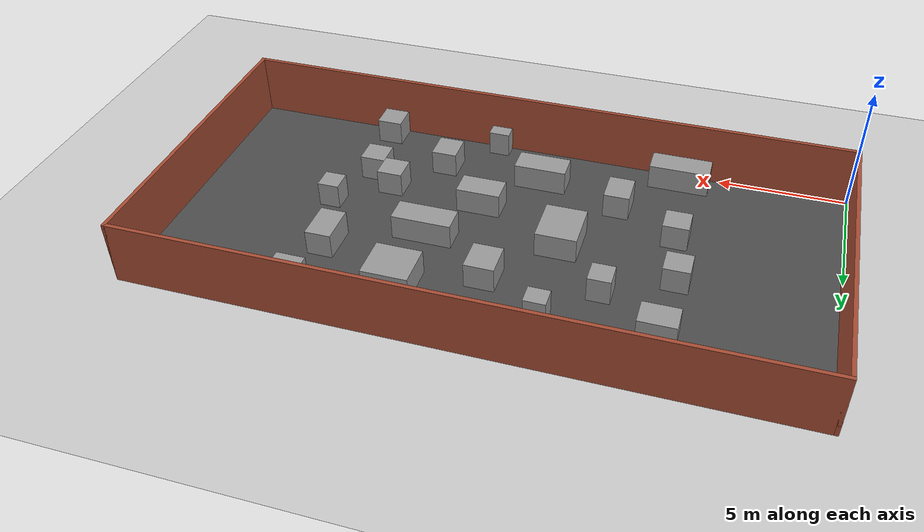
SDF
<sdf version="1.6">
 <world name="default">
  <gravity>0 0 -9.8</gravity>
  <magnetic_field>6e-06 2.3e-05 -4.2e-05</magnetic_field>
  <atmosphere type="adiabatic"/>
  <physics name="default_physics" default="0" type="ode">
   <max_step_size>0.001</max_step_size>
   <real_time_factor>1</real_time_factor>
   <real_time_update_rate>1000</real_time_update_rate>
  </physics>
  <model name="ground_plane">
   <static>1</static>
   <link name="link">
    <collision name="collision">
     <geometry><plane><normal>0 0 1</normal><size>100 100</size></plane></geometry>
     <surface><friction><ode><mu>100</mu><mu2>50</mu2></ode></friction></surface>
    </collision>
    <visual name="visual">
     <cast_shadows>0</cast_shadows>
     <geometry><plane><normal>0 0 1</normal><size>100 100</size></plane></geometry>
     <material>
      <script><uri>file://media/materials/scripts/gazebo.material</uri><name>Gazebo/Grey</name></script>
     </material>
    </visual>
   </link>
  </model>
  <model name="asphalt_plane">
   <static>1</static>
   <link name="link">
    <collision name="collision"><geometry><box><size>25 12 0.1</size></box></geometry></collision>
    <visual name="visual">
     <cast_shadows>0</cast_shadows>
     <geometry><box><size>25 12 0.1</size></box></geometry>
     <material>
      <script>
       <uri>model://asphalt_plane/materials/scripts</uri>
       <uri>model://asphalt_plane/materials/textures</uri>
       <name>vrc/asphalt</name>
      </script>
     </material>
    </visual>
   </link>
   <pose>12.4855 5.93359 0 0 -0 0</pose>
  </model>
  <scene><ambient>0.7 0.7 0.7 1</ambient><background>0.7 0.7 0.7 1</background><shadows>1</shadows></scene>
  <audio><device>default</device></audio>
  <spherical_coordinates>
   <surface_model>EARTH_WGS84</surface_model>
   <latitude_deg>0</latitude_deg>
   <longitude_deg>0</longitude_deg>
   <elevation>0</elevation>
   <heading_deg>0</heading_deg>
  </spherical_coordinates>
  <model name="test_map">
   <pose>12.5 6 0 0 -0 0</pose>
   <link name="Wall_40">
    <collision name="Wall_40_Collision">
     <geometry><box><size>25.15 0.15 2.5</size></box></geometry>
     <pose>0 0 1.25 0 -0 0</pose>
    </collision>
    <visual name="Wall_40_Visual">
     <pose>0 0 1.25 0 -0 0</pose>
     <geometry><box><size>25.15 0.15 2.5</size></box></geometry>
     <material>
      <script><uri>file://media/materials/scripts/gazebo.material</uri><name>Gazebo/Bricks</name></script>
      <ambient>1 1 1 1</ambient>
     </material>
     <meta><layer>0</layer></meta>
    </visual>
    <pose>-0 6 0 0 -0 0</pose>
   </link>
   <link name="Wall_41">
    <collision name="Wall_41_Collision">
     <geometry><box><size>12.15 0.15 2.5</size></box></geometry>
     <pose>0 0 1.25 0 -0 0</pose>
    </collision>
    <visual name="Wall_41_Visual">
     <pose>0 0 1.25 0 -0 0</pose>
     <geometry><box><size>12.15 0.15 2.5</size></box></geometry>
     <material>
      <script><uri>file://media/materials/scripts/gazebo.material</uri><name>Gazebo/Bricks</name></script>
      <ambient>1 1 1 1</ambient>
     </material>
     <meta><layer>0</layer></meta>
    </visual>
    <pose>12.5 0 0 0 -0 -1.5708</pose>
   </link>
   <link name="Wall_42">
    <collision name="Wall_42_Collision">
     <geometry><box><size>25.15 0.15 2.5</size></box></geometry>
     <pose>0 0 1.25 0 -0 0</pose>
    </collision>
    <visual name="Wall_42_Visual">
     <pose>0 0 1.25 0 -0 0</pose>
     <geometry><box><size>25.15 0.15 2.5</size></box></geometry>
     <material>
      <script><uri>file://media/materials/scripts/gazebo.material</uri><name>Gazebo/Bricks</name></script>
      <ambient>1 1 1 1</ambient>
     </material>
     <meta><layer>0</layer></meta>
    </visual>
    <pose>-0 -6 0 0 -0 3.14159</pose>
   </link>
   <link name="Wall_43">
    <collision name="Wall_43_Collision">
     <geometry><box><size>12.15 0.15 2.5</size></box></geometry>
     <pose>0 0 1.25 0 -0 0</pose>
    </collision>
    <visual name="Wall_43_Visual">
     <pose>0 0 1.25 0 -0 0</pose>
     <geometry><box><size>12.15 0.15 2.5</size></box></geometry>
     <material>
      <script><uri>file://media/materials/scripts/gazebo.material</uri><name>Gazebo/Bricks</name></script>
      <ambient>1 1 1 1</ambient>
     </material>
     <meta><layer>0</layer></meta>
    </visual>
    <pose>-12.5 0 0 0 -0 1.5708</pose>
   </link>
   <static>1</static>
  </model>
  <model name="unit_box">
   <static>1</static>
   <pose>5.95302 9.44937 0.549999 -2e-06 -0 1.1e-05</pose>
   <link name="link">
    <inertial>
     <mass>1</mass>
     <inertia>
      <ixx>0.166667</ixx>
      <ixy>0</ixy>
      <ixz>0</ixz>
      <iyy>0.166667</iyy>
      <iyz>0</iyz>
      <izz>0.166667</izz>
     </inertia>
    </inertial>
    <collision name="collision"><geometry><box><size>1.39666 1 1</size></box></geometry></collision>
    <visual name="visual">
     <geometry><box><size>1.39666 1 1</size></box></geometry>
     <material>
      <script><name>Gazebo/Grey</name><uri>file://media/materials/scripts/gazebo.material</uri></script>
     </material>
    </visual>
   </link>
  </model>
  <light name="user_directional_light_0" type="directional">
   <pose>12.0645 5.50361 1 0 -0 0</pose>
   <diffuse>0.5 0.5 0.5 1</diffuse>
   <specular>0.1 0.1 0.1 1</specular>
   <direction>0.1 0.1 -0.9</direction>
   <attenuation>
    <range>20</range>
    <constant>0.5</constant>
    <linear>0.01</linear>
    <quadratic>0.001</quadratic>
   </attenuation>
  </light>
  <model name="unit_box_0">
   <static>1</static>
   <pose>10.2375 5.61974 0.549993 8e-06 -0 0.000615</pose>
   <link name="link">
    <inertial>
     <mass>1</mass>
     <inertia>
      <ixx>0.166667</ixx>
      <ixy>0</ixy>
      <ixz>0</ixz>
      <iyy>0.166667</iyy>
      <iyz>0</iyz>
      <izz>0.166667</izz>
     </inertia>
    </inertial>
    <collision name="collision"><geometry><box><size>1.5848 1.84228 1</size></box></geometry></collision>
    <visual name="visual">
     <geometry><box><size>1.5848 1.84228 1</size></box></geometry>
     <material>
      <script><name>Gazebo/Grey</name><uri>file://media/materials/scripts/gazebo.material</uri></script>
     </material>
    </visual>
   </link>
  </model>
  <model name="unit_box_1">
   <static>1</static>
   <pose>8.16111 11.3992 0.55 0 -0 4.4e-05</pose>
   <link name="link">
    <inertial>
     <mass>1</mass>
     <inertia>
      <ixx>0.166667</ixx>
      <ixy>0</ixy>
      <ixz>0</ixz>
      <iyy>0.166667</iyy>
      <iyz>0</iyz>
      <izz>0.166667</izz>
     </inertia>
    </inertial>
    <collision name="collision"><geometry><box><size>1 1 1</size></box></geometry></collision>
    <visual name="visual">
     <geometry><box><size>1 1 1</size></box></geometry>
     <material>
      <script><name>Gazebo/Grey</name><uri>file://media/materials/scripts/gazebo.material</uri></script>
     </material>
    </visual>
   </link>
  </model>
  <model name="unit_box_2">
   <static>1</static>
   <pose>10.098 9.70357 0.549996 3e-06 -7e-06 -0.000738</pose>
   <link name="link">
    <inertial>
     <mass>1</mass>
     <inertia>
      <ixx>0.166667</ixx>
      <ixy>0</ixy>
      <ixz>0</ixz>
      <iyy>0.166667</iyy>
      <iyz>0</iyz>
      <izz>0.166667</izz>
     </inertia>
    </inertial>
    <collision name="collision"><geometry><box><size>0.828264 0.742816 1</size></box></geometry></collision>
    <visual name="visual">
     <geometry><box><size>0.828264 0.742816 1</size></box></geometry>
     <material>
      <script><name>Gazebo/Grey</name><uri>file://media/materials/scripts/gazebo.material</uri></script>
     </material>
    </visual>
   </link>
  </model>
  <model name="unit_box_3">
   <static>1</static>
   <pose>5.74347 6.6121 0.55 0 -0 4.4e-05</pose>
   <link name="link">
    <inertial>
     <mass>1</mass>
     <inertia>
      <ixx>0.166667</ixx>
      <ixy>0</ixy>
      <ixz>0</ixz>
      <iyy>0.166667</iyy>
      <iyz>0</iyz>
      <izz>0.166667</izz>
     </inertia>
    </inertial>
    <collision name="collision"><geometry><box><size>1 1 1</size></box></geometry></collision>
    <visual name="visual">
     <geometry><box><size>1 1 1</size></box></geometry>
     <material>
      <script><name>Gazebo/Grey</name><uri>file://media/materials/scripts/gazebo.material</uri></script>
     </material>
    </visual>
   </link>
  </model>
  <model name="unit_box_4">
   <static>1</static>
   <pose>8.59296 2.8977 0.55 -0 -0 -0.000443</pose>
   <link name="link">
    <inertial>
     <mass>1</mass>
     <inertia>
      <ixx>0.166667</ixx>
      <ixy>0</ixy>
      <ixz>0</ixz>
      <iyy>0.166667</iyy>
      <iyz>0</iyz>
      <izz>0.166667</izz>
     </inertia>
    </inertial>
    <collision name="collision"><geometry><box><size>1 1.24774 1</size></box></geometry></collision>
    <visual name="visual">
     <geometry><box><size>1 1.24774 1</size></box></geometry>
     <material>
      <script><name>Gazebo/Grey</name><uri>file://media/materials/scripts/gazebo.material</uri></script>
     </material>
    </visual>
   </link>
  </model>
  <model name="unit_box_5">
   <static>1</static>
   <pose>15.4711 9.43611 0.549992 1e-05 -0 -0.001813</pose>
   <link name="link">
    <inertial>
     <mass>1</mass>
     <inertia>
      <ixx>0.166667</ixx>
      <ixy>0</ixy>
      <ixz>0</ixz>
      <iyy>0.166667</iyy>
      <iyz>0</iyz>
      <izz>0.166667</izz>
     </inertia>
    </inertial>
    <collision name="collision"><geometry><box><size>1.76814 1.61978 1</size></box></geometry></collision>
    <visual name="visual">
     <geometry><box><size>1.76814 1.61978 1</size></box></geometry>
     <material>
      <script><name>Gazebo/Grey</name><uri>file://media/materials/scripts/gazebo.material</uri></script>
     </material>
    </visual>
   </link>
  </model>
  <model name="unit_box_6">
   <static>1</static>
   <pose>12.5072 11.3961 0.55 0 -0 3.3e-05</pose>
   <link name="link">
    <inertial>
     <mass>1</mass>
     <inertia>
      <ixx>0.166667</ixx>
      <ixy>0</ixy>
      <ixz>0</ixz>
      <iyy>0.166667</iyy>
      <iyz>0</iyz>
      <izz>0.166667</izz>
     </inertia>
    </inertial>
    <collision name="collision"><geometry><box><size>1 1 1</size></box></geometry></collision>
    <visual name="visual">
     <geometry><box><size>1 1 1</size></box></geometry>
     <material>
      <script><name>Gazebo/Grey</name><uri>file://media/materials/scripts/gazebo.material</uri></script>
     </material>
    </visual>
   </link>
  </model>
  <model name="unit_box_7">
   <static>1</static>
   <pose>12.426 8.28409 0.55 -0 -0 -3e-05</pose>
   <link name="link">
    <inertial>
     <mass>1</mass>
     <inertia>
      <ixx>0.166667</ixx>
      <ixy>0</ixy>
      <ixz>0</ixz>
      <iyy>0.166667</iyy>
      <iyz>0</iyz>
      <izz>0.166667</izz>
     </inertia>
    </inertial>
    <collision name="collision"><geometry><box><size>1.13919 1.26849 1</size></box></geometry></collision>
    <visual name="visual">
     <geometry><box><size>1.13919 1.26849 1</size></box></geometry>
     <material>
      <script><name>Gazebo/Grey</name><uri>file://media/materials/scripts/gazebo.material</uri></script>
     </material>
    </visual>
   </link>
  </model>
  <model name="unit_box_9">
   <static>1</static>
   <pose>6.13481 4.24143 0.55 0 -0 3.3e-05</pose>
   <link name="link">
    <inertial>
     <mass>1</mass>
     <inertia>
      <ixx>0.166667</ixx>
      <ixy>0</ixy>
      <ixz>0</ixz>
      <iyy>0.166667</iyy>
      <iyz>0</iyz>
      <izz>0.166667</izz>
     </inertia>
    </inertial>
    <collision name="collision"><geometry><box><size>1 1 1</size></box></geometry></collision>
    <visual name="visual">
     <geometry><box><size>1 1 1</size></box></geometry>
     <material>
      <script><name>Gazebo/Grey</name><uri>file://media/materials/scripts/gazebo.material</uri></script>
     </material>
    </visual>
   </link>
  </model>
  <model name="unit_box_10">
   <static>1</static>
   <pose>8.23034 7.93165 0.549996 0 1e-05 0.000123</pose>
   <link name="link">
    <inertial>
     <mass>1</mass>
     <inertia>
      <ixx>0.166667</ixx>
      <ixy>0</ixy>
      <ixz>0</ixz>
      <iyy>0.166667</iyy>
      <iyz>0</iyz>
      <izz>0.166667</izz>
     </inertia>
    </inertial>
    <collision name="collision"><geometry><box><size>0.868741 0.896076 1</size></box></geometry></collision>
    <visual name="visual">
     <geometry><box><size>0.868741 0.896076 1</size></box></geometry>
     <material>
      <script><name>Gazebo/Grey</name><uri>file://media/materials/scripts/gazebo.material</uri></script>
     </material>
    </visual>
   </link>
  </model>
  <model name="unit_box_9_clone">
   <static>1</static>
   <pose>13.7531 4.2983 0.549995 -1e-05 -0 -8e-06</pose>
   <link name="link">
    <inertial>
     <mass>1</mass>
     <inertia>
      <ixx>0.166667</ixx>
      <ixy>0</ixy>
      <ixz>0</ixz>
      <iyy>0.166667</iyy>
      <iyz>0</iyz>
      <izz>0.166667</izz>
     </inertia>
    </inertial>
    <collision name="collision"><geometry><box><size>1.71766 1 1</size></box></geometry></collision>
    <visual name="visual">
     <geometry><box><size>1.71766 1 1</size></box></geometry>
     <material>
      <script><name>Gazebo/Grey</name><uri>file://media/materials/scripts/gazebo.material</uri></script>
     </material>
    </visual>
   </link>
  </model>
  <model name="unit_box_7_clone">
   <static>1</static>
   <pose>15.2676 6.57211 0.549995 -9e-06 -0 -0.000124</pose>
   <link name="link">
    <inertial>
     <mass>1</mass>
     <inertia>
      <ixx>0.166667</ixx>
      <ixy>0</ixy>
      <ixz>0</ixz>
      <iyy>0.166667</iyy>
      <iyz>0</iyz>
      <izz>0.166667</izz>
     </inertia>
    </inertial>
    <collision name="collision"><geometry><box><size>2.31831 1 1</size></box></geometry></collision>
    <visual name="visual">
     <geometry><box><size>2.31831 1 1</size></box></geometry>
     <material>
      <script><name>Gazebo/Grey</name><uri>file://media/materials/scripts/gazebo.material</uri></script>
     </material>
    </visual>
   </link>
  </model>
  <model name="unit_box_4_clone">
   <static>1</static>
   <pose>18.6121 8.06778 0.550002 0 -4e-06 1.7e-05</pose>
   <link name="link">
    <inertial>
     <mass>1</mass>
     <inertia>
      <ixx>0.166667</ixx>
      <ixy>0</ixy>
      <ixz>0</ixz>
      <iyy>0.166667</iyy>
      <iyz>0</iyz>
      <izz>0.166667</izz>
     </inertia>
    </inertial>
    <collision name="collision"><geometry><box><size>1 1.50668 1</size></box></geometry></collision>
    <visual name="visual">
     <geometry><box><size>1 1.50668 1</size></box></geometry>
     <material>
      <script><name>Gazebo/Grey</name><uri>file://media/materials/scripts/gazebo.material</uri></script>
     </material>
    </visual>
   </link>
  </model>
  <model name="unit_box_9_clone_clone">
   <static>1</static>
   <pose>19.0192 10.4681 0.55 0 -0 1.8e-05</pose>
   <link name="link">
    <inertial>
     <mass>1</mass>
     <inertia>
      <ixx>0.166667</ixx>
      <ixy>0</ixy>
      <ixz>0</ixz>
      <iyy>0.166667</iyy>
      <iyz>0</iyz>
      <izz>0.166667</izz>
     </inertia>
    </inertial>
    <collision name="collision"><geometry><box><size>1.10979 0.671313 1</size></box></geometry></collision>
    <visual name="visual">
     <geometry><box><size>1.10979 0.671313 1</size></box></geometry>
     <material>
      <script><name>Gazebo/Grey</name><uri>file://media/materials/scripts/gazebo.material</uri></script>
     </material>
    </visual>
   </link>
  </model>
  <model name="unit_box_9_clone_clone_clone">
   <static>1</static>
   <pose>19.4698 5.54062 0.549998 -8e-06 3e-06 -1.1e-05</pose>
   <link name="link">
    <inertial>
     <mass>1</mass>
     <inertia>
      <ixx>0.166667</ixx>
      <ixy>0</ixy>
      <ixz>0</ixz>
      <iyy>0.166667</iyy>
      <iyz>0</iyz>
      <izz>0.166667</izz>
     </inertia>
    </inertial>
    <collision name="collision"><geometry><box><size>0.831652 0.830583 1</size></box></geometry></collision>
    <visual name="visual">
     <geometry><box><size>0.831652 0.830583 1</size></box></geometry>
     <material>
      <script><name>Gazebo/Grey</name><uri>file://media/materials/scripts/gazebo.material</uri></script>
     </material>
    </visual>
   </link>
  </model>
  <model name="unit_box_4_clone_0">
   <static>1</static>
   <pose>15.8454 2.1117 0.549999 0 -2e-06 1.5e-05</pose>
   <link name="link">
    <inertial>
     <mass>1</mass>
     <inertia>
      <ixx>0.166667</ixx>
      <ixy>0</ixy>
      <ixz>0</ixz>
      <iyy>0.166667</iyy>
      <iyz>0</iyz>
      <izz>0.166667</izz>
     </inertia>
    </inertial>
    <collision name="collision"><geometry><box><size>1 1.1111 1</size></box></geometry></collision>
    <visual name="visual">
     <geometry><box><size>1 1.1111 1</size></box></geometry>
     <material>
      <script><name>Gazebo/Grey</name><uri>file://media/materials/scripts/gazebo.material</uri></script>
     </material>
    </visual>
   </link>
  </model>
  <model name="unit_box_7_clone_0">
   <static>1</static>
   <pose>6.54233 0.643216 0.549995 9e-06 -0 -0.000126</pose>
   <link name="link">
    <inertial>
     <mass>1</mass>
     <inertia>
      <ixx>0.166667</ixx>
      <ixy>0</ixy>
      <ixz>0</ixz>
      <iyy>0.166667</iyy>
      <iyz>0</iyz>
      <izz>0.166667</izz>
     </inertia>
    </inertial>
    <collision name="collision"><geometry><box><size>2.37062 1 1</size></box></geometry></collision>
    <visual name="visual">
     <geometry><box><size>2.37062 1 1</size></box></geometry>
     <material>
      <script><name>Gazebo/Grey</name><uri>file://media/materials/scripts/gazebo.material</uri></script>
     </material>
    </visual>
   </link>
  </model>
  <model name="unit_box_7_clone_clone">
   <static>1</static>
   <pose>11.8561 2.13093 0.549995 -9e-06 -0 -0.000105</pose>
   <link name="link">
    <inertial>
     <mass>1</mass>
     <inertia>
      <ixx>0.166667</ixx>
      <ixy>0</ixy>
      <ixz>0</ixz>
      <iyy>0.166667</iyy>
      <iyz>0</iyz>
      <izz>0.166667</izz>
     </inertia>
    </inertial>
    <collision name="collision"><geometry><box><size>2.05347 1 1</size></box></geometry></collision>
    <visual name="visual">
     <geometry><box><size>2.05347 1 1</size></box></geometry>
     <material>
      <script><name>Gazebo/Grey</name><uri>file://media/materials/scripts/gazebo.material</uri></script>
     </material>
    </visual>
   </link>
  </model>
  <model name="unit_box_9_clone_clone_0">
   <static>1</static>
   <pose>18.8048 0.609276 0.55 0 -0 4.4e-05</pose>
   <link name="link">
    <inertial>
     <mass>1</mass>
     <inertia>
      <ixx>0.166667</ixx>
      <ixy>0</ixy>
      <ixz>0</ixz>
      <iyy>0.166667</iyy>
      <iyz>0</iyz>
      <izz>0.166667</izz>
     </inertia>
    </inertial>
    <collision name="collision"><geometry><box><size>1 1 1</size></box></geometry></collision>
    <visual name="visual">
     <geometry><box><size>1 1 1</size></box></geometry>
     <material>
      <script><name>Gazebo/Grey</name><uri>file://media/materials/scripts/gazebo.material</uri></script>
     </material>
    </visual>
   </link>
  </model>
  <model name="unit_box_9_clone_clone_clone_clone">
   <static>1</static>
   <pose>18.4844 3.2994 0.55 0 -0 7.2e-05</pose>
   <link name="link">
    <inertial>
     <mass>1</mass>
     <inertia>
      <ixx>0.166667</ixx>
      <ixy>0</ixy>
      <ixz>0</ixz>
      <iyy>0.166667</iyy>
      <iyz>0</iyz>
      <izz>0.166667</izz>
     </inertia>
    </inertial>
    <collision name="collision"><geometry><box><size>1 1 1</size></box></geometry></collision>
    <visual name="visual">
     <geometry><box><size>1 1 1</size></box></geometry>
     <material>
      <script><name>Gazebo/Grey</name><uri>file://media/materials/scripts/gazebo.material</uri></script>
     </material>
    </visual>
   </link>
  </model>
  <model name="unit_box_9_clone_clone_clone_clone_clone">
   <static>1</static>
   <pose>17.4793 4.06208 0.55 0 -0 6.7e-05</pose>
   <link name="link">
    <inertial>
     <mass>1</mass>
     <inertia>
      <ixx>0.166667</ixx>
      <ixy>0</ixy>
      <ixz>0</ixz>
      <iyy>0.166667</iyy>
      <iyz>0</iyz>
      <izz>0.166667</izz>
     </inertia>
    </inertial>
    <collision name="collision"><geometry><box><size>1 1 1</size></box></geometry></collision>
    <visual name="visual">
     <geometry><box><size>1 1 1</size></box></geometry>
     <material>
      <script><name>Gazebo/Grey</name><uri>file://media/materials/scripts/gazebo.material</uri></script>
     </material>
    </visual>
   </link>
  </model>
  <model name="unit_box_9_clone_clone_clone_clone_0">
   <static>1</static>
   <pose>14.104 0.380843 0.549995 -2e-06 9e-06 -0.001504</pose>
   <link name="link">
    <inertial>
     <mass>1</mass>
     <inertia>
      <ixx>0.166667</ixx>
      <ixy>0</ixy>
      <ixz>0</ixz>
      <iyy>0.166667</iyy>
      <iyz>0</iyz>
      <izz>0.166667</izz>
     </inertia>
    </inertial>
    <collision name="collision"><geometry><box><size>0.831652 0.555759 1</size></box></geometry></collision>
    <visual name="visual">
     <geometry><box><size>0.831652 0.555759 1</size></box></geometry>
     <material>
      <script><name>Gazebo/Grey</name><uri>file://media/materials/scripts/gazebo.material</uri></script>
     </material>
    </visual>
   </link>
  </model>
 </world>
</sdf>
